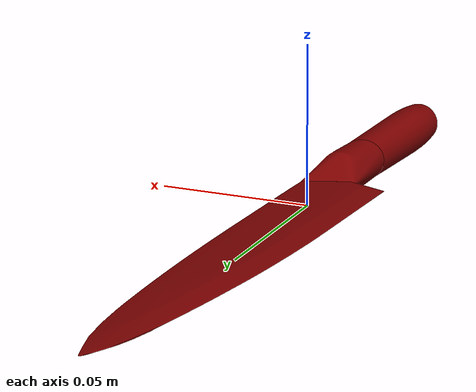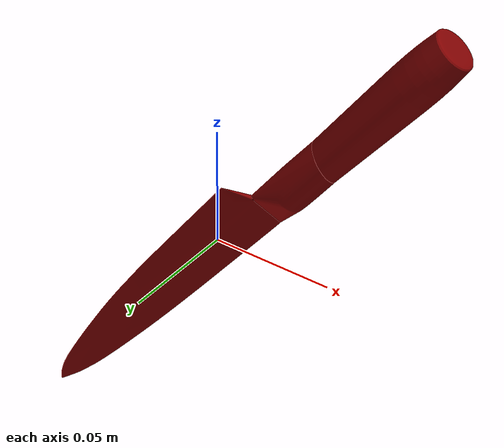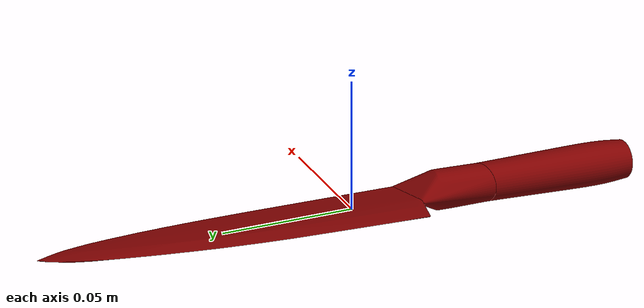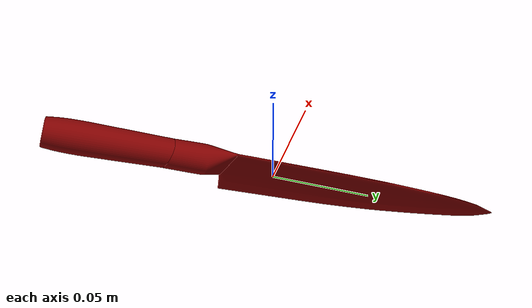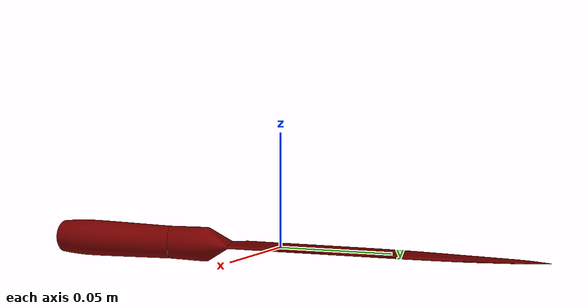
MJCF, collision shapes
<?xml version='1.0' encoding='utf-8'?>
<mujoco model="kitchen_knife_14">
  <asset>
    <mesh file="visual/model_normalized_0.obj" name="model_normalized_0_vis" scale="0.22000000000000003 0.22000000000000003 0.22000000000000003" refquat="-0.10375411349410572 -0.1037541134941056 0.6994534179865388 -0.699453417986539" />
    <texture type="2d" name="image0" file="visual/image0.png" />
    <material name="Material_27" texture="image0" specular="0.5" shininess="0.15999998099999999" />
    <mesh file="collision/collision_mesh_collision_0.obj" name="knife_collision_mesh_0" scale="0.22000000000000003 0.22000000000000003 0.22000000000000003" refquat="-0.10375411349410572 -0.1037541134941056 0.6994534179865388 -0.699453417986539" />
    <mesh file="collision/collision_mesh_collision_1.obj" name="knife_collision_mesh_1" scale="0.22000000000000003 0.22000000000000003 0.22000000000000003" refquat="-0.10375411349410572 -0.1037541134941056 0.6994534179865388 -0.699453417986539" />
    <mesh file="collision/collision_mesh_collision_2.obj" name="knife_collision_mesh_2" scale="0.22000000000000003 0.22000000000000003 0.22000000000000003" refquat="-0.10375411349410572 -0.1037541134941056 0.6994534179865388 -0.699453417986539" />
    </asset>
  <default>
    <default class="region">
      <geom group="1" conaffinity="0" contype="0" rgba="0 1 0 0" />
      </default>
    <default class="collision">
      <geom group="0" rgba="0.5 0 0 0.5" density="1000.0" />
      </default>
    </default>
  <worldbody>
    <body>
      <body name="object">
        <geom solimp="0.998 0.998 0.001" solref="0.001 1" density="100" friction="0.95 0.3 0.1" type="mesh" mesh="model_normalized_0_vis" conaffinity="0" contype="0" group="1" material="Material_27" />
        <geom class="region" name="reg_bbox" type="box" pos="-0.0019525957981730614 0.0017417262000171644 3.6198745765742e-06" size="0.01255971524252222 0.11647217390398379 0.008213657100117946" />
        <geom mesh="knife_collision_mesh_0" type="mesh" class="collision" />
        <geom mesh="knife_collision_mesh_1" type="mesh" class="collision" />
        <geom mesh="knife_collision_mesh_2" type="mesh" class="collision" />
        </body>
      <site rgba="0 0 0 0" size="0.005" pos="0 0 -0.0082100372" name="bottom_site" /><site rgba="0 0 0 0" size="0.005" pos="0 0 0.008217277" name="top_site" /><site rgba="0 0 0 0" size="0.005" pos="0.1182139 0.1182139 0" name="horizontal_radius_site" /></body>
    </worldbody>
  </mujoco>
